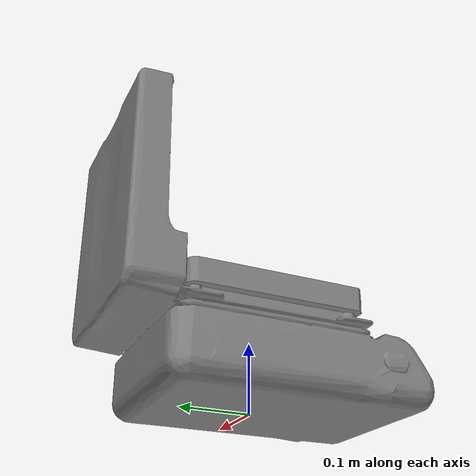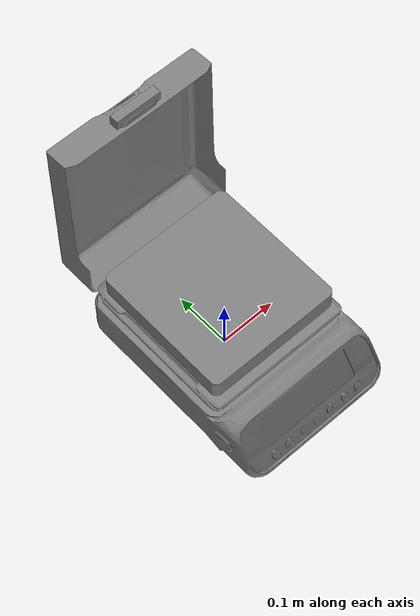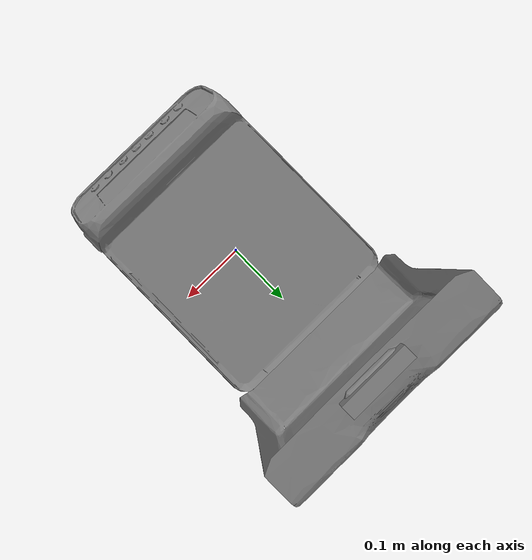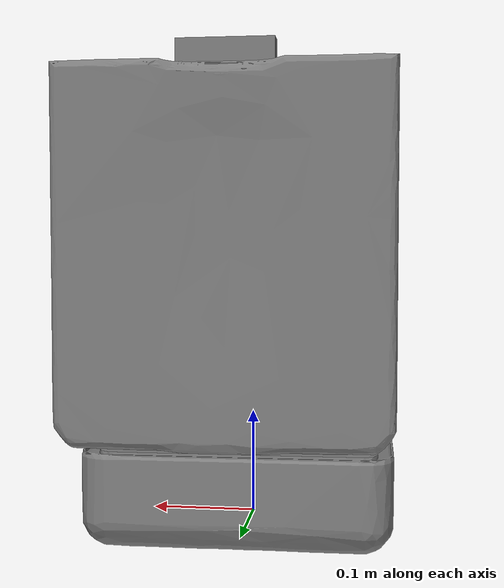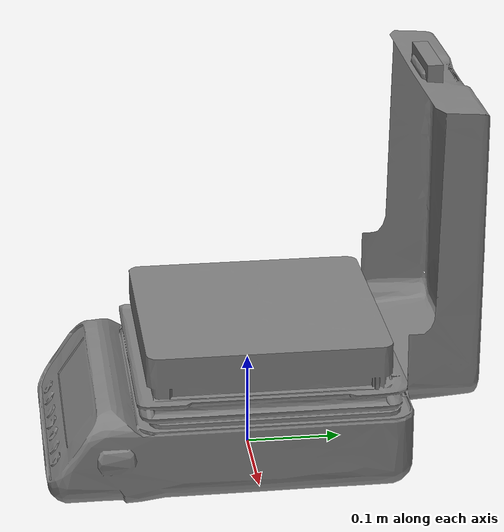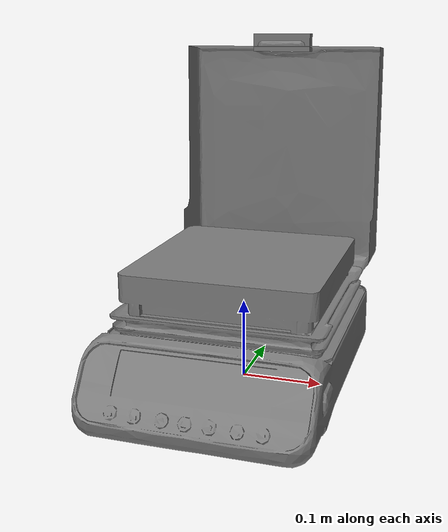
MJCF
<mujoco model="HotPlateHPR6">

  <compiler angle="radian" meshdir="../../assets" />

  <option gravity="0 0 -9.81" />

  <asset>

    <mesh name="hotplate_hpr6_body_mesh" file="HotPlateHPR6/body.obj" scale="0.240000 0.240000 0.240000" />

    <mesh name="hotplate_hpr6_lid_mesh" file="HotPlateHPR6/lid.obj" scale="0.240000 0.240000 0.240000" />
  </asset>

  <worldbody>
    <body name="hotplate_hpr6" quat="0.7071 0.7071 0 0">

      <geom name="hotplate_hpr6_body_visual" type="mesh" mesh="hotplate_hpr6_body_mesh" rgba="0.5 0.5 0.5 1" contype="0" conaffinity="0" />

      <geom name="hotplate_hpr6_body_collision_1" type="box" size="0.128000 0.052000 0.168000" pos="0.000000 0.052000 0.024000" density="7500" contype="1" conaffinity="1" rgba="0 0 0 0" />
      <geom name="hotplate_hpr6_body_collision_2" type="box" size="0.114400 0.040000 0.128000" density="7500" pos="0.000000 0.120000 -0.014400" contype="1" conaffinity="1" rgba="0 0 0 0" />

      <body name="hotplate_hpr6_lid" pos="0.000000 0.000000 0.000000" quat="1 0 0 0">

        <joint name="hotplate_hpr6_lid_hinge" type="hinge" pos="0.000000 0.099200 -0.148000" axis="1 0 0" range="-0.0 1.57" damping="0.2" />

        <geom name="hotplate_hpr6_lid_visual" type="mesh" mesh="hotplate_hpr6_lid_mesh" contype="0" rgba="0.5 0.5 0.5 1" conaffinity="0" />

        <geom name="hotplate_hpr6_lid_collision_1" type="box" size="0.128000 0.148000 0.004000" density="2500" pos="0.000000 0.256000 -0.216000" contype="1" conaffinity="1" friction="1.0 0.3 0.001" rgba="0 0 0 0" />
        <geom name="hotplate_hpr6_lid_collision_2" type="box" density="2500" size="0.004000 0.148000 0.024000" pos="0.136000 0.256000 -0.192000" contype="1" conaffinity="1" friction="1.0 0.3 0.001" rgba="0 0 0 0" />
        <geom name="hotplate_hpr6_lid_collision_3" type="box" density="2500" size="0.004000 0.148000 0.024000" pos="-0.136000 0.256000 -0.192000" contype="1" conaffinity="1" friction="1.0 0.3 0.001" rgba="0 0 0 0" />
        <geom name="hotplate_hpr6_lid_collision_4" type="box" size="0.136000 0.004000 0.024000" density="2500" pos="0.000000 0.408000 -0.192000" contype="1" conaffinity="1" friction="1.0 0.3 0.001" rgba="0 0 0 0" />
        <geom name="hotplate_hpr6_lid_collision_5" type="box" size="0.040000 0.012000 0.008000" density="2500" pos="0.000000 0.416000 -0.184000" contype="1" conaffinity="1" friction="1.0 0.3 0.001" rgba="0.5 0.5 0.5 1" />

      </body>

    </body>

  </worldbody>

  <actuator>
     <position name="lid_control" joint="hotplate_hpr6_lid_hinge" kp="20" ctrlrange="-0 1.57" ctrllimited="true" />
  </actuator>
</mujoco>
